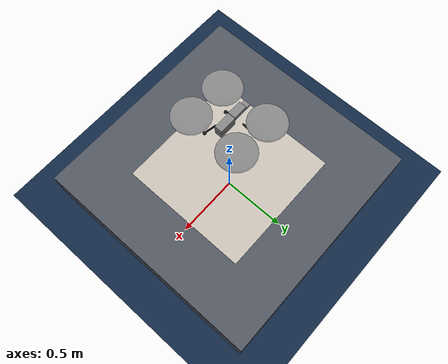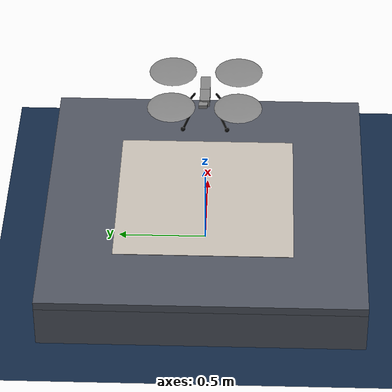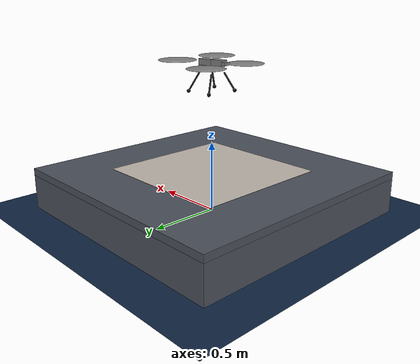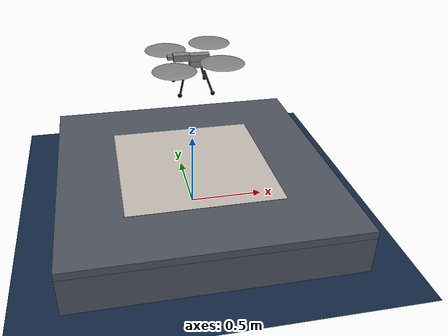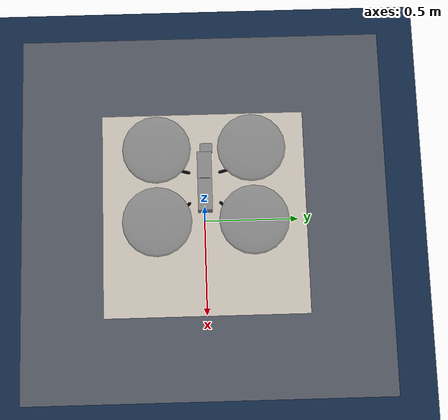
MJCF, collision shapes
<mujoco model="x2_landing_ship">
  <compiler autolimits="true" assetdir="../meshes/skydio_x2"/>
  <option timestep="0.002" density="1.225" viscosity="1.8e-5" integrator="implicitfast"/>
  <visual>
    <global offwidth="1280" offheight="720"/>
  </visual>

  <default>
    <default class="x2">
      <geom mass="0"/>
      <motor ctrlrange="0 13"/>
      <mesh scale="0.01 0.01 0.01"/>
      <default class="visual">
        <geom group="2" type="mesh" contype="0" conaffinity="0"/>
      </default>
      <default class="collision">
        <geom group="3" type="box"/>
        <default class="rotor">
          <geom type="ellipsoid" size=".13 .13 .01"/>
        </default>
      </default>
      <site group="5"/>
    </default>
    <!-- Landing gear: light, frictional, collidable. -->
    <default class="leg">
      <geom type="capsule" size="0.006" mass="0.008" rgba="0.05 0.05 0.05 1"
            contype="1" conaffinity="1" condim="4" friction="1.2 0.05 0.001"
            solref="0.02 1.5" solimp="0.95 0.99 0.001"/>
    </default>
    <!-- Feet: shock-absorbing (overdamped) contact so touchdown doesn't bounce, like compliant gear. -->
    <default class="foot">
      <geom type="sphere" size="0.013" mass="0.004" rgba="0.05 0.05 0.05 1"
            contype="1" conaffinity="1" condim="4" friction="3.0 0.15 0.003"
            solref="0.025 1.8" solimp="0.96 0.99 0.001"/>
    </default>
  </default>

  <asset>
    <texture type="skybox" builtin="gradient" rgb1="0.45 0.6 0.78" rgb2="0.05 0.1 0.2" width="512" height="3072"/>
    <!-- Sea surface: a darker blue checker so deck motion is visible against the water. -->
    <texture type="2d" name="sea" builtin="checker" mark="none" rgb1="0.08 0.18 0.30"
             rgb2="0.05 0.12 0.22" width="300" height="300"/>
    <material name="sea" texture="sea" texuniform="true" texrepeat="8 8" reflectance="0.35"/>
    <!-- X2 visual assets (copied from MuJoCo Menagerie skydio_x2). -->
    <texture type="2d" file="X2_lowpoly_texture_SpinningProps_1024.png"/>
    <material name="phong3SG" texture="X2_lowpoly_texture_SpinningProps_1024"/>
    <material name="invisible" rgba="0 0 0 0"/>
    <mesh class="x2" file="X2_lowpoly.obj"/>
    <!-- Deck with ArUco fiducial (DICT_4X4_50 id 0, 0.36 m). Texture by scripts/gen_aruco_deck.py. -->
    <texture name="aruco_deck" type="2d" file="../../textures/aruco_deck.png"/>
    <material name="deck_aruco" texture="aruco_deck" texuniform="false" texrepeat="1 1"/>
    <material name="hull" rgba="0.30 0.32 0.36 1"/>
  </asset>

  <worldbody>
    <!-- Diffuse, shadow-free lighting so rotor shadows don't wash out the deck fiducial. -->
    <light pos="0 0 4" dir="0 0 -1" directional="true" diffuse="0.8 0.8 0.8"
           ambient="0.4 0.4 0.4" castshadow="false"/>
    <light pos="2 -2 3" dir="-0.5 0.5 -1" diffuse="0.3 0.3 0.3" castshadow="false"/>
    <geom name="floor" size="0 0 0.05" type="plane" material="sea"/>

    <body name="platform" pos="0 0 0" gravcomp="1">
      <joint name="plat_x" type="slide" axis="1 0 0" damping="2000"/>
      <joint name="plat_y" type="slide" axis="0 1 0" damping="2000"/>
      <joint name="plat_z" type="slide" axis="0 0 1" damping="2000"/>
      <joint name="plat_yaw" type="hinge" axis="0 0 1" damping="400"/>
      <joint name="plat_pitch" type="hinge" axis="0 1 0" damping="400"/>
      <joint name="plat_roll" type="hinge" axis="1 0 0" damping="400"/>
      <geom name="chassis" type="box" size="0.9 0.9 0.125" pos="0 0 0.125" mass="60"
            material="hull" contype="0" conaffinity="0"/>
      <!-- Large flight deck (1.8 m, the collision surface; world.py keys touchdown on this geom). -->
      <geom name="deck" type="box" size="0.9 0.9 0.025" pos="0 0 0.275" mass="5"
            material="hull" contype="1" conaffinity="1" condim="4" friction="3.0 0.1 0.002"
            solref="0.02 1.5" solimp="0.96 0.99 0.001"/>
      <!-- ArUco fiducial pad (visual only): kept at 1.0 m = BoardSpec.deck_size so the markers stay at
           their calibrated physical size regardless of deck size -> perception unchanged. -->
      <geom name="fiducial" type="box" size="0.5 0.5 0.001" pos="0 0 0.301"
            material="deck_aruco" contype="0" conaffinity="0"/>
      <site name="deck_center" pos="0 0 0.303" size="0.02" rgba="1 0.85 0.1 1" group="4"/>
    </body>

    <body name="gimbal" mocap="true" pos="0 0 0.91">
      <camera name="down" pos="0 0 0" fovy="90" mode="fixed"/>
    </body>

    <!-- Quadrotor: Skydio X2 body (validated) + landing gear + rangefinder. -->
    <body name="x2" pos="0 0 1.0" childclass="x2">
      <freejoint name="root"/>
      <camera name="track" pos="-1 0 .5" xyaxes="0 -1 0 1 0 2" mode="trackcom"/>
      <site name="imu" pos="0 0 .02"/>
      <site name="rangefinder" pos="0 0 -.03" quat="0 1 0 0" size="0.005" group="5"/>

      <geom material="phong3SG" mesh="X2_lowpoly" class="visual" quat="0 0 1 1"/>
      <geom class="collision" size=".06 .027 .02" pos=".04 0 .02"/>
      <geom class="collision" size=".06 .027 .02" pos=".04 0 .06"/>
      <geom class="collision" size=".05 .027 .02" pos="-.07 0 .065"/>
      <geom class="collision" size=".023 .017 .01" pos="-.137 .008 .065" quat="1 0 0 1"/>

      <geom name="rotor1" class="rotor" pos="-.14 -.18 .05" mass=".25"/>
      <geom name="rotor2" class="rotor" pos="-.14 .18 .05" mass=".25"/>
      <geom name="rotor3" class="rotor" pos=".14 .18 .08" mass=".25"/>
      <geom name="rotor4" class="rotor" pos=".14 -.18 .08" mass=".25"/>
      <geom size=".16 .04 .02" pos="0 0 0.02" type="ellipsoid" mass=".325" class="visual" material="invisible"/>

      <site name="thrust1" pos="-.14 -.18 .05"/>
      <site name="thrust2" pos="-.14 .18 .05"/>
      <site name="thrust3" pos=".14 .18 .08"/>
      <site name="thrust4" pos=".14 -.18 .08"/>

      <!-- Landing gear (4 legs + feet), inside the rotor footprint. -->
      <geom class="leg" name="leg_fl" fromto=".06 .06 -.01 .10 .12 -.13"/>
      <geom class="leg" name="leg_fr" fromto=".06 -.06 -.01 .10 -.12 -.13"/>
      <geom class="leg" name="leg_rl" fromto="-.06 .06 -.01 -.10 .12 -.13"/>
      <geom class="leg" name="leg_rr" fromto="-.06 -.06 -.01 -.10 -.12 -.13"/>
      <geom class="foot" name="foot_fl" pos=".10 .12 -.13"/>
      <geom class="foot" name="foot_fr" pos=".10 -.12 -.13"/>
      <geom class="foot" name="foot_rl" pos="-.10 .12 -.13"/>
      <geom class="foot" name="foot_rr" pos="-.10 -.12 -.13"/>
    </body>
  </worldbody>

  <actuator>
    <!-- Corrected quad-X reaction-torque signs (diagonal rotors share a spin direction): full-rank
         control allocation (cond ~50), net hover yaw torque = 0. See the ground world for details. -->
    <motor class="x2" name="thrust1" site="thrust1" gear="0 0 1 0 0  .0201"/>
    <motor class="x2" name="thrust2" site="thrust2" gear="0 0 1 0 0 -.0201"/>
    <motor class="x2" name="thrust3" site="thrust3" gear="0 0 1 0 0  .0201"/>
    <motor class="x2" name="thrust4" site="thrust4" gear="0 0 1 0 0 -.0201"/>
    <!-- Deck seakeeping servos (position-controlled; heavy body tracks the prescribed 6-DOF path).
         Heave uses a stiff servo; roll/pitch/yaw use softer rotational servos. -->
    <position name="plat_x_srv" joint="plat_x" kp="15000"/>
    <position name="plat_y_srv" joint="plat_y" kp="15000"/>
    <position name="plat_z_srv" joint="plat_z" kp="15000"/>
    <position name="plat_yaw_srv" joint="plat_yaw" kp="5000"/>
    <position name="plat_pitch_srv" joint="plat_pitch" kp="5000"/>
    <position name="plat_roll_srv" joint="plat_roll" kp="5000"/>
  </actuator>

  <sensor>
    <gyro name="body_gyro" site="imu"/>
    <accelerometer name="body_linacc" site="imu"/>
    <framequat name="body_quat" objtype="site" objname="imu"/>
    <rangefinder name="altitude" site="rangefinder"/>
  </sensor>

  <keyframe>
    <!-- qpos = [plat_x, plat_y, plat_z, plat_yaw, plat_pitch, plat_roll, drone_xyz, drone_quat];
         ctrl = [4 thrusts, 6 deck servos]. Hover thrust ~3.368 N/motor (drone mass ~1.373 kg). -->
    <key name="hover" qpos="0 0 0 0 0 0 0 0 1.0 1 0 0 0"
         ctrl="3.368 3.368 3.368 3.368 0 0 0 0 0 0"/>
  </keyframe>
</mujoco>
